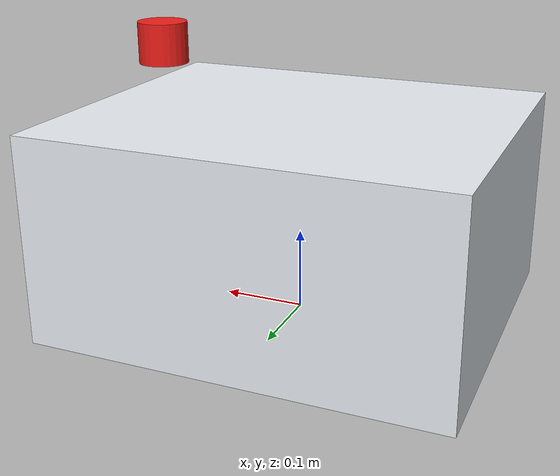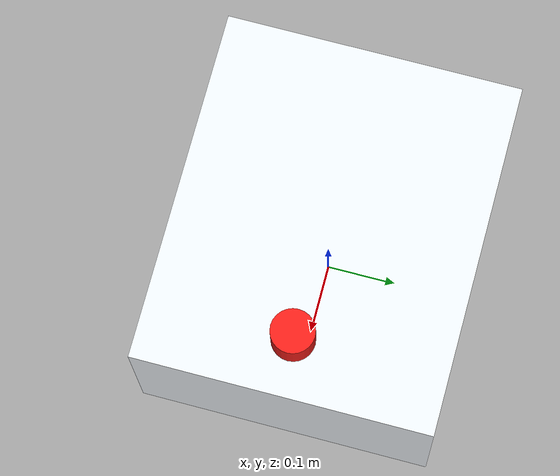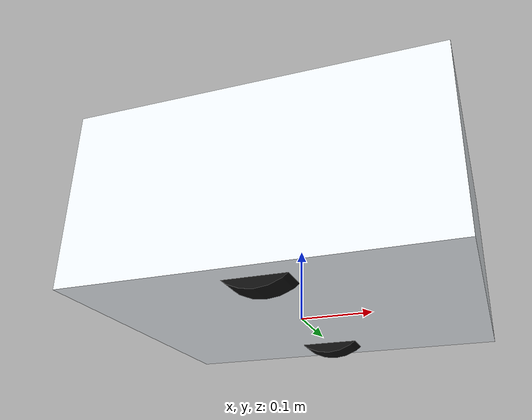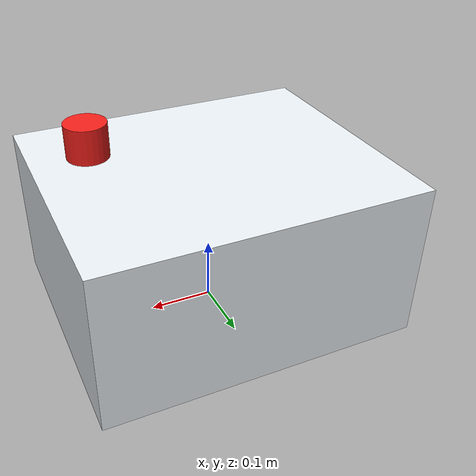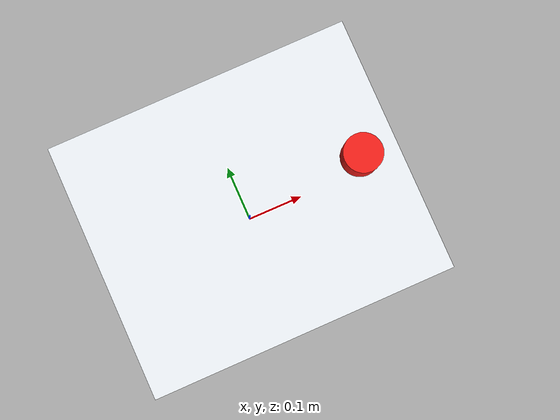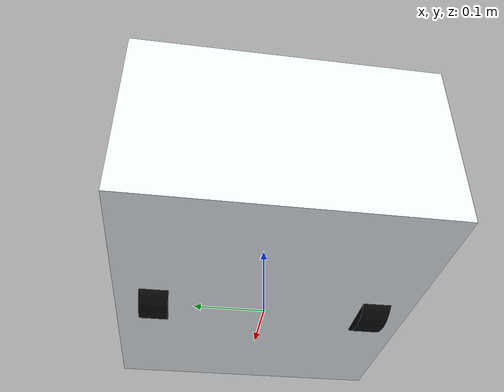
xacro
<?xml version="1.0"?>
<!--
  DT-01 真机模型入口（无 Gazebo 插件，仅模型与 TF）。
  用法：xacro urdf/dt01_real.urdf.xacro
  由 launch/dt01_bringup.launch.py 自动加载。
-->
<robot name="dt01" xmlns:xacro="http://www.ros.org/wiki/xacro">

  <!-- 覆盖 dt01.urdf.xacro 的 sim_mode 默认值 → 关闭 Gazebo 插件 -->
  <xacro:property name="sim_mode" value="false"/>

  <xacro:include filename="dt01.urdf.xacro"/>

</robot>

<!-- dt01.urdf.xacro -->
<!--
  DT-01 差速底盘仿真模型
  关键尺寸（来自 DT-01 手册 / 开发计划）：
    - 驱动轮直径 140mm (0.14m)
    - 轮距（两驱动轮间距）312mm (0.312m)  => 半轮距 0.156m
    - 2 个万向脚轮（前后各一，仿真中用摩擦球近似）
  车体尺寸为合理估算（车到手后按实测更新）。
-->
<robot name="dt01" xmlns:xacro="http://www.ros.org/wiki/xacro">

  <!-- sim_mode: true=仿真（含 Gazebo 插件），false=真机（仅模型与 TF）。
       真机用法见 dt01_real.urdf.xacro（wrapper 覆盖本属性再 include）。
       注意：命令行传参一律是字符串，无法覆盖布尔属性，必须用 wrapper。 -->
  <xacro:property name="sim_mode" default="true"/>

  <!-- ===== 可调参数 =====
       尺寸来源：
       - 轮径/轮距：DT-01 手册（140mm / 312mm）
       - 车体长/宽：DT-01客户版V-3.2.STEP 实测（长 515mm / 整机宽 403mm）
       - 车体高度：估算（STEP 整机高 289mm 含顶部结构）
       车到手后按实测更新。 -->
  <xacro:property name="wheel_diameter" value="0.14"/>      <!-- 轮径 140mm -->
  <xacro:property name="wheel_radius" value="0.07"/>
  <xacro:property name="wheel_width" value="0.04"/>
  <xacro:property name="half_track" value="0.156"/>         <!-- 半轮距 312/2 -->
  <xacro:property name="wheel_mass" value="0.8"/>

  <!-- 官方手册：500*420*310mm，35kg，离地 23mm -->
  <xacro:property name="body_length" value="0.50"/>
  <xacro:property name="body_width" value="0.42"/>
  <xacro:property name="body_height" value="0.25"/>
  <xacro:property name="body_mass" value="35.0"/>

  <!-- 激光雷达安装位置（车头中心，顶部附近） -->
  <xacro:property name="lidar_x" value="0.18"/>
  <xacro:property name="lidar_z" value="0.32"/>

  <!-- IMU 安装位置（车体中心，IMU-Sealand 安装角误差支持，先居中） -->
  <xacro:property name="imu_x" value="0.0"/>
  <xacro:property name="imu_z" value="0.05"/>

  <!-- ===== 基础链接 ===== -->
  <link name="base_footprint"/>

  <link name="base_link">
    <visual>
      <geometry>
        <box size="${body_length} ${body_width} ${body_height}"/>
      </geometry>
      <origin xyz="0 0 0" rpy="0 0 0"/>
      <!-- 高可见度亮白车身，避免与灰色地面/墙面融合 -->
      <material name="body_white">
        <color rgba="0.92 0.94 0.96 1.0"/>
      </material>
    </visual>
    <collision>
      <geometry>
        <box size="${body_length} ${body_width} ${body_height}"/>
      </geometry>
      <origin xyz="0 0 0" rpy="0 0 0"/>
    </collision>
    <inertial>
      <mass value="${body_mass}"/>
      <inertia ixx="0.3" ixy="0" ixz="0" iyy="0.3" iyz="0" izz="0.3"/>
    </inertial>
  </link>

  <joint name="base_footprint_joint" type="fixed">
    <parent link="base_footprint"/>
    <child link="base_link"/>
    <!-- base_footprint 是地面参考点（z=0），base_link 抬高半个车身高度，
         使车体底面贴地。 -->
    <origin xyz="0 0 ${body_height/2}" rpy="0 0 0"/>
  </joint>

  <!-- ===== 左驱动轮 ===== -->
  <!-- 圆柱默认轴线沿 Z；必须绕 X 转 90°，使圆柱侧躺、轴线沿 Y（车体左右方向），
       才能以前后滚动方式行驶。origin 向下偏移 wheel_radius，使轮子底部贴地。 -->
  <link name="left_wheel">
    <visual>
      <origin xyz="0 0 0" rpy="1.5708 0 0"/>
      <geometry>
        <cylinder radius="${wheel_radius}" length="${wheel_width}"/>
      </geometry>
      <material name="wheel_black">
        <color rgba="0.05 0.05 0.05 1.0"/>
      </material>
    </visual>
    <collision>
      <origin xyz="0 0 0" rpy="1.5708 0 0"/>
      <geometry>
        <cylinder radius="${wheel_radius}" length="${wheel_width}"/>
      </geometry>
    </collision>
    <inertial>
      <mass value="${wheel_mass}"/>
      <inertia ixx="0.001" ixy="0" ixz="0" iyy="0.001" iyz="0" izz="0.001"/>
    </inertial>
  </link>

  <joint name="left_wheel_joint" type="continuous">
    <parent link="base_link"/>
    <child link="left_wheel"/>
    <origin xyz="0 ${half_track} ${-wheel_radius}" rpy="0 0 0"/>
    <axis xyz="0 1 0"/>
    <limit effort="100" velocity="100"/>
  </joint>

  <!-- ===== 右驱动轮 ===== -->
  <link name="right_wheel">
    <visual>
      <origin xyz="0 0 0" rpy="1.5708 0 0"/>
      <geometry>
        <cylinder radius="${wheel_radius}" length="${wheel_width}"/>
      </geometry>
      <material name="wheel_black"/>
    </visual>
    <collision>
      <origin xyz="0 0 0" rpy="1.5708 0 0"/>
      <geometry>
        <cylinder radius="${wheel_radius}" length="${wheel_width}"/>
      </geometry>
    </collision>
    <inertial>
      <mass value="${wheel_mass}"/>
      <inertia ixx="0.001" ixy="0" ixz="0" iyy="0.001" iyz="0" izz="0.001"/>
    </inertial>
  </link>

  <joint name="right_wheel_joint" type="continuous">
    <parent link="base_link"/>
    <child link="right_wheel"/>
    <origin xyz="0 ${-half_track} ${-wheel_radius}" rpy="0 0 0"/>
    <axis xyz="0 1 0"/>
    <limit effort="100" velocity="100"/>
  </joint>

  <!-- ===== 前万向脚轮（摩擦球近似） ===== -->
  <link name="front_caster">
    <visual>
      <geometry>
        <sphere radius="0.03"/>
      </geometry>
      <material name="caster_dark_grey">
        <color rgba="0.25 0.25 0.27 1.0"/>
      </material>
    </visual>
    <collision>
      <geometry>
        <sphere radius="0.03"/>
      </geometry>
    </collision>
    <inertial>
      <mass value="0.1"/>
      <inertia ixx="0.0001" ixy="0" ixz="0" iyy="0.0001" iyz="0" izz="0.0001"/>
    </inertial>
  </link>

  <joint name="front_caster_joint" type="fixed">
    <parent link="base_link"/>
    <child link="front_caster"/>
    <!-- 脚轮中心放在 base_link 下方，使球底贴地（球半径 0.03，base_link 底面在 -body_height/2） -->
    <origin xyz="${body_length/2 - 0.03} 0 ${-body_height/2 + 0.03}" rpy="0 0 0"/>
  </joint>

  <!-- ===== 后万向脚轮 ===== -->
  <link name="rear_caster">
    <visual>
      <geometry>
        <sphere radius="0.03"/>
      </geometry>
      <material name="caster_dark_grey"/>
    </visual>
    <collision>
      <geometry>
        <sphere radius="0.03"/>
      </geometry>
    </collision>
    <inertial>
      <mass value="0.1"/>
      <inertia ixx="0.0001" ixy="0" ixz="0" iyy="0.0001" iyz="0" izz="0.0001"/>
    </inertial>
  </link>

  <joint name="rear_caster_joint" type="fixed">
    <parent link="base_link"/>
    <child link="rear_caster"/>
    <origin xyz="${-body_length/2 + 0.03} 0 ${-body_height/2 + 0.03}" rpy="0 0 0"/>
  </joint>

  <!-- ===== 激光雷达 ===== -->
  <link name="base_scan">
    <visual>
      <geometry>
        <cylinder radius="0.03" length="0.05"/>
      </geometry>
      <origin xyz="0 0 0" rpy="0 0 0"/>
      <!-- 激光雷达统一为醒目红色 -->
      <material name="lidar_red">
        <color rgba="0.95 0.12 0.10 1.0"/>
      </material>
    </visual>
    <inertial>
      <mass value="0.1"/>
      <inertia ixx="0.00001" ixy="0" ixz="0" iyy="0.00001" iyz="0" izz="0.00001"/>
    </inertial>
  </link>

  <joint name="base_scan_joint" type="fixed">
    <parent link="base_link"/>
    <child link="base_scan"/>
    <!-- lidar_z 是相对于地面的高度，base_link 中心高度为 body_height/2 -->
    <origin xyz="${lidar_x} 0 ${lidar_z - body_height/2}" rpy="0 0 0"/>
  </joint>

  <!-- ===== IMU（对齐 IMU-Sealand 真机：九轴、话题 /imu/data） ===== -->
  <link name="imu_link">
    <inertial>
      <mass value="0.02"/>
      <inertia ixx="0.00001" ixy="0" ixz="0" iyy="0.00001" iyz="0" izz="0.00001"/>
    </inertial>
  </link>

  <joint name="imu_joint" type="fixed">
    <parent link="base_link"/>
    <child link="imu_link"/>
    <origin xyz="${imu_x} 0 ${imu_z - body_height/2}" rpy="0 0 0"/>
  </joint>

  <!-- ===== Gazebo 插件（仅仿真 sim_mode:=true 时启用） ===== -->
  <xacro:if value="${sim_mode}">
  <gazebo reference="base_link"><material>Gazebo/White</material></gazebo>
  <gazebo reference="left_wheel"><material>Gazebo/Black</material></gazebo>
  <gazebo reference="right_wheel"><material>Gazebo/Black</material></gazebo>
  <gazebo reference="front_caster"><material>Gazebo/DarkGrey</material></gazebo>
  <gazebo reference="rear_caster"><material>Gazebo/DarkGrey</material></gazebo>
  <gazebo reference="base_scan"><material>Gazebo/Red</material></gazebo>

  <!-- ===== Gazebo 差速驱动插件 ===== -->
  <gazebo>
    <plugin name="diff_drive" filename="libgazebo_ros_diff_drive.so">
      <update_rate>30</update_rate>
      <left_joint>left_wheel_joint</left_joint>
      <right_joint>right_wheel_joint</right_joint>
      <wheel_separation>${half_track * 2}</wheel_separation>
      <wheel_diameter>${wheel_diameter}</wheel_diameter>
      <max_wheel_torque>20</max_wheel_torque>
      <max_wheel_acceleration>5.0</max_wheel_acceleration>
      <publish_odom>true</publish_odom>
      <publish_odom_tf>true</publish_odom_tf>
      <publish_wheel_tf>true</publish_wheel_tf>
      <odometry_frame>odom</odometry_frame>
      <robot_base_frame>base_footprint</robot_base_frame>
      <command_topic>cmd_vel</command_topic>
      <odometry_topic>odom</odometry_topic>
    </plugin>
  </gazebo>

  <!-- ===== 激光雷达 Gazebo 插件 ===== -->
  <gazebo reference="base_scan">
    <sensor type="ray" name="lds_lfcd_sensor">
      <pose>0 0 0 0 0 0</pose>
      <visualize>false</visualize>
      <update_rate>10</update_rate>
      <ray>
        <scan>
          <horizontal>
            <samples>360</samples>
            <resolution>1</resolution>
            <min_angle>-3.14159</min_angle>
            <max_angle>3.14159</max_angle>
          </horizontal>
        </scan>
        <range>
          <!-- min 取 0.25m：雷达装在车头 (0.18, 0)，到车身最近角(前角)约
               0.22m，0.25m 以内的命中只可能是机器人自身结构，直接丢弃，
               防止自扫描点污染地图。 -->
          <min>0.25</min>
          <max>30.0</max>
          <resolution>0.01</resolution>
        </range>
      </ray>
      <plugin name="scan" filename="libgazebo_ros_ray_sensor.so">
        <ros>
          <remapping>~/out:=scan</remapping>
        </ros>
        <output_type>sensor_msgs/LaserScan</output_type>
        <frame_name>base_scan</frame_name>
      </plugin>
    </sensor>
  </gazebo>

  <!-- ===== IMU Gazebo 插件（输出与 IMU-Sealand ROS 驱动一致的话题 /imu/data） ===== -->
  <gazebo reference="imu_link">
    <sensor type="imu" name="imu_sensor">
      <always_on>true</always_on>
      <update_rate>200</update_rate>
      <imu>
        <angular_velocity>
          <x><noise type="gaussian"><mean>0.0</mean><stddev>0.001</stddev></noise></x>
          <y><noise type="gaussian"><mean>0.0</mean><stddev>0.001</stddev></noise></y>
          <z><noise type="gaussian"><mean>0.0</mean><stddev>0.001</stddev></noise></z>
        </angular_velocity>
        <linear_acceleration>
          <x><noise type="gaussian"><mean>0.0</mean><stddev>0.01</stddev></noise></x>
          <y><noise type="gaussian"><mean>0.0</mean><stddev>0.01</stddev></noise></y>
          <z><noise type="gaussian"><mean>0.0</mean><stddev>0.01</stddev></noise></z>
        </linear_acceleration>
      </imu>
      <plugin name="imu" filename="libgazebo_ros_imu_sensor.so">
        <ros>
          <remapping>~/out:=imu/data</remapping>
        </ros>
        <initial_orientation_as_reference>false</initial_orientation_as_reference>
      </plugin>
    </sensor>
  </gazebo>
  </xacro:if>

</robot>
